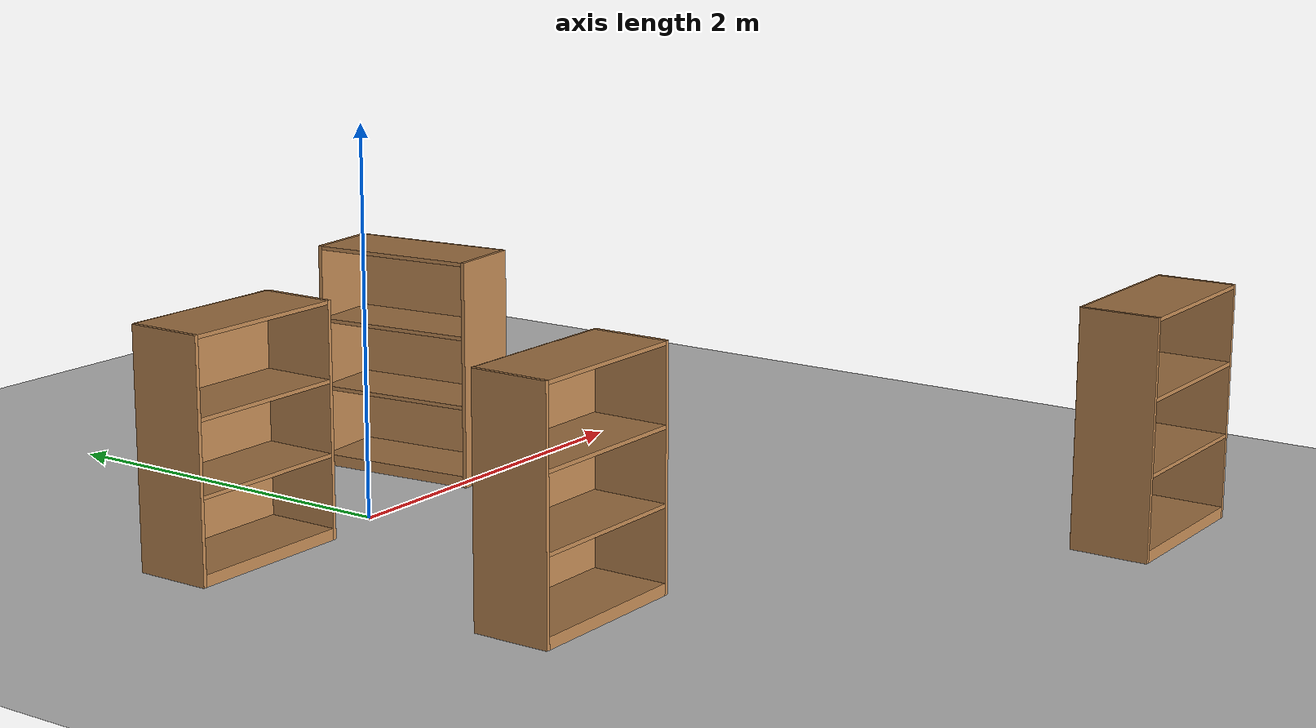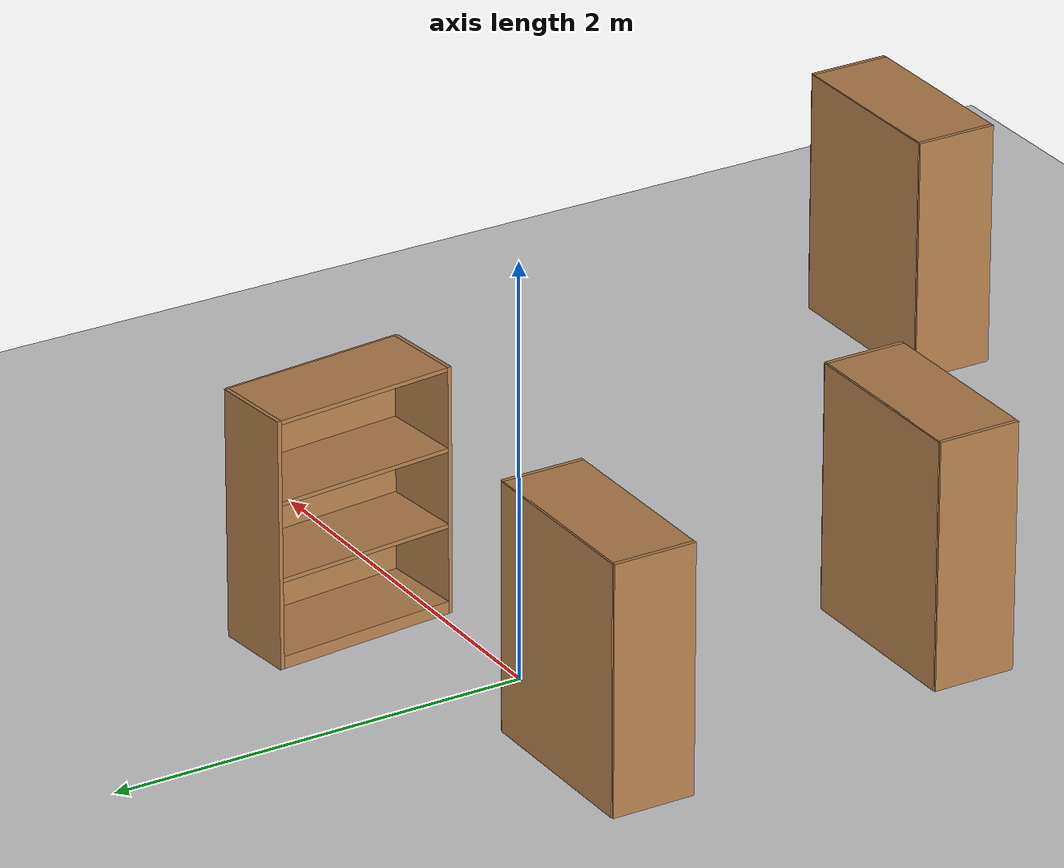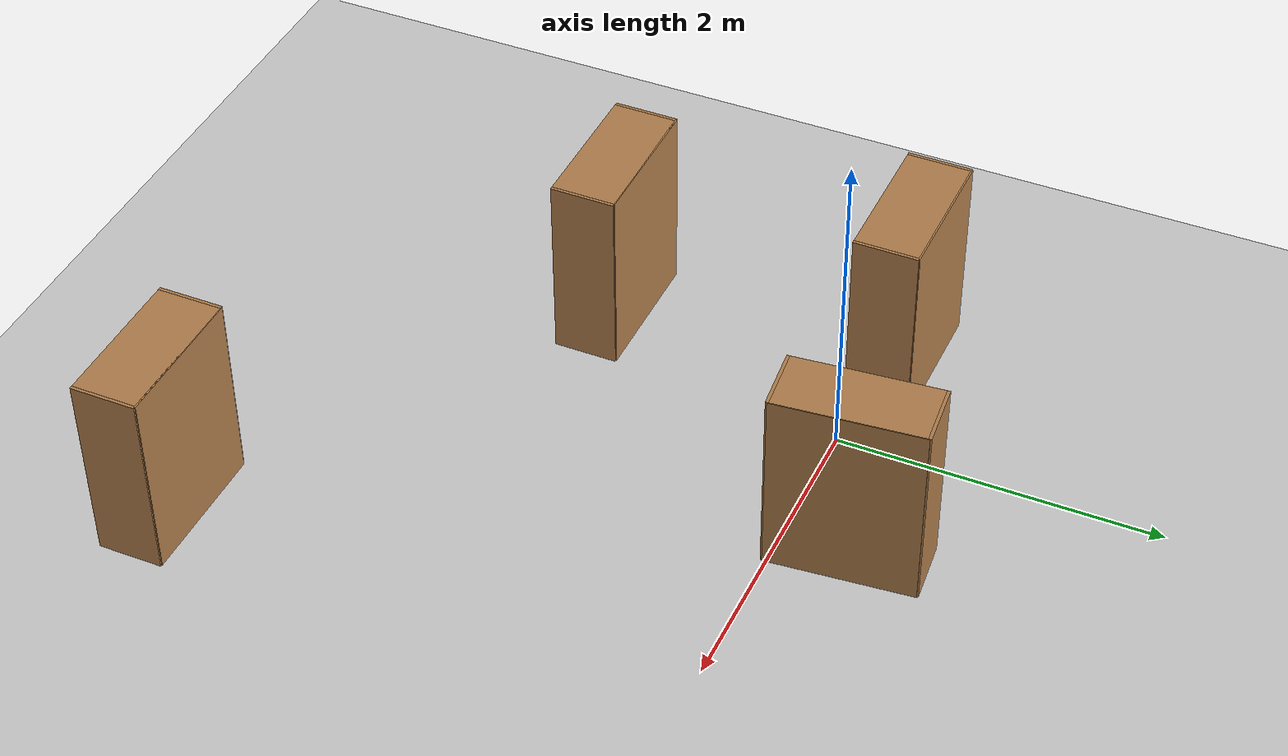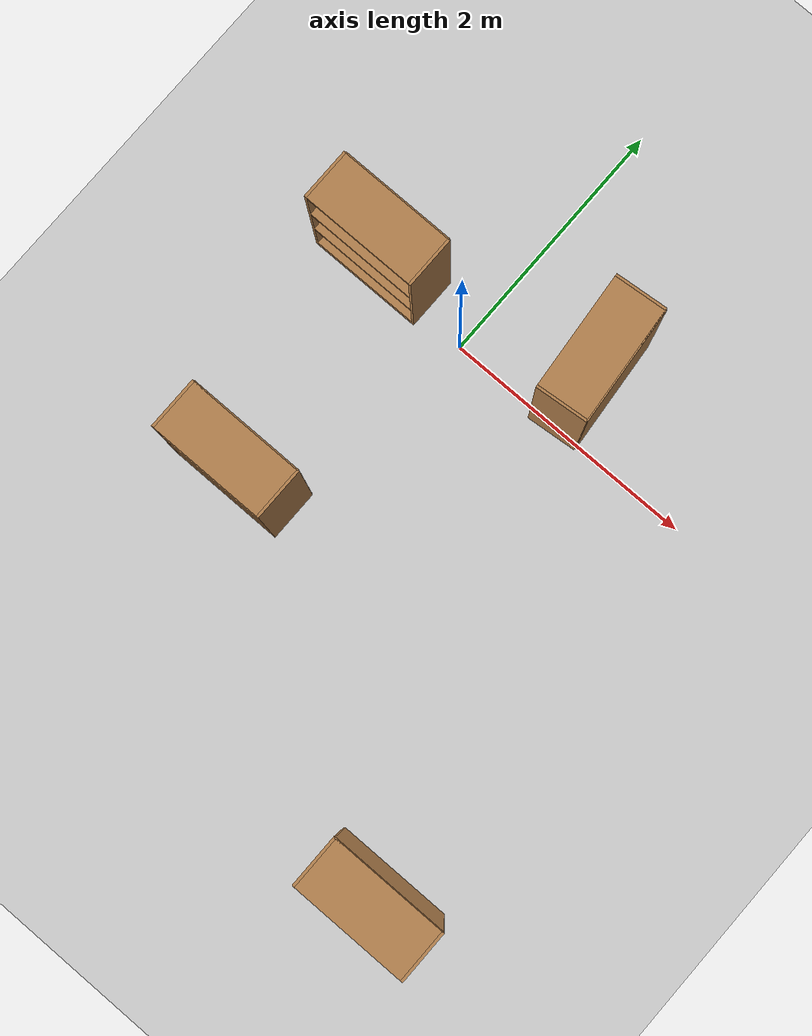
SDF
<sdf version="1.7">
 <world name="default">
  <light name="sun" type="directional">
   <pose>0 0 10 0 -0 0</pose>
   <diffuse>0.8 0.8 0.8 1</diffuse>
   <specular>0.2 0.2 0.2 1</specular>
   <attenuation>
    <range>1000</range>
    <constant>0.9</constant>
    <linear>0.01</linear>
    <quadratic>0.001</quadratic>
   </attenuation>
   <direction>-0.5 0.1 -0.9</direction>
   <spot><inner_angle>0</inner_angle><outer_angle>0</outer_angle><falloff>0</falloff></spot>
  </light>
  <model name="ground_plane">
   <static>1</static>
   <link name="link">
    <collision name="collision">
     <geometry><plane><normal>0 0 1</normal><size>100 100</size></plane></geometry>
     <surface>
      <contact><collide_bitmask>65535</collide_bitmask></contact>
      <friction><ode><mu>100</mu><mu2>50</mu2></ode></friction>
     </surface>
    </collision>
    <visual name="visual">
     <cast_shadows>0</cast_shadows>
     <geometry><plane><normal>0 0 1</normal><size>100 100</size></plane></geometry>
     <material>
      <script><uri>file://media/materials/scripts/gazebo.material</uri><name>Gazebo/Grey</name></script>
     </material>
    </visual>
   </link>
  </model>
  <gravity>0 0 -9.8</gravity>
  <magnetic_field>6e-06 2.3e-05 -4.2e-05</magnetic_field>
  <atmosphere type="adiabatic"/>
  <physics type="ode">
   <max_step_size>0.001</max_step_size>
   <real_time_factor>1</real_time_factor>
   <real_time_update_rate>1000</real_time_update_rate>
  </physics>
  <scene><ambient>0.4 0.4 0.4 1</ambient><background>0.7 0.7 0.7 1</background><shadows>1</shadows></scene>
  <audio><device>default</device></audio>
  <spherical_coordinates>
   <surface_model>EARTH_WGS84</surface_model>
   <latitude_deg>0</latitude_deg>
   <longitude_deg>0</longitude_deg>
   <elevation>0</elevation>
   <heading_deg>0</heading_deg>
  </spherical_coordinates>
  <model name="bookshelf">
   <static>1</static>
   <link name="link">
    <inertial><mass>1</mass></inertial>
    <collision name="back">
     <pose>0 0.005 0.6 0 -0 0</pose>
     <geometry><box><size>0.9 0.01 1.2</size></box></geometry>
    </collision>
    <visual name="visual1">
     <pose>0 0.005 0.6 0 -0 0</pose>
     <geometry><box><size>0.9 0.01 1.2</size></box></geometry>
     <material>
      <script><uri>file://media/materials/scripts/gazebo.material</uri><name>Gazebo/Wood</name></script>
     </material>
    </visual>
    <collision name="left_side">
     <pose>0.45 -0.195 0.6 0 -0 0</pose>
     <geometry><box><size>0.02 0.4 1.2</size></box></geometry>
    </collision>
    <visual name="visual2">
     <pose>0.45 -0.195 0.6 0 -0 0</pose>
     <geometry><box><size>0.02 0.4 1.2</size></box></geometry>
     <material>
      <script><uri>file://media/materials/scripts/gazebo.material</uri><name>Gazebo/Wood</name></script>
     </material>
    </visual>
    <collision name="right_side">
     <pose>-0.45 -0.195 0.6 0 -0 0</pose>
     <geometry><box><size>0.02 0.4 1.2</size></box></geometry>
    </collision>
    <visual name="visual3">
     <pose>-0.45 -0.195 0.6 0 -0 0</pose>
     <geometry><box><size>0.02 0.4 1.2</size></box></geometry>
     <material>
      <script><uri>file://media/materials/scripts/gazebo.material</uri><name>Gazebo/Wood</name></script>
     </material>
    </visual>
    <collision name="bottom">
     <pose>0 -0.195 0.03 0 -0 0</pose>
     <geometry><box><size>0.88 0.4 0.06</size></box></geometry>
    </collision>
    <visual name="visual4">
     <pose>0 -0.195 0.03 0 -0 0</pose>
     <geometry><box><size>0.88 0.4 0.06</size></box></geometry>
     <material>
      <script><uri>file://media/materials/scripts/gazebo.material</uri><name>Gazebo/Wood</name></script>
     </material>
    </visual>
    <collision name="top">
     <pose>0 -0.195 1.19 0 -0 0</pose>
     <geometry><box><size>0.88 0.4 0.02</size></box></geometry>
    </collision>
    <visual name="visual5">
     <pose>0 -0.195 1.19 0 -0 0</pose>
     <geometry><box><size>0.88 0.4 0.02</size></box></geometry>
     <material>
      <script><uri>file://media/materials/scripts/gazebo.material</uri><name>Gazebo/Wood</name></script>
     </material>
    </visual>
    <collision name="low_shelf">
     <pose>0 -0.195 0.43 0 -0 0</pose>
     <geometry><box><size>0.88 0.4 0.02</size></box></geometry>
    </collision>
    <visual name="visual6">
     <pose>0 -0.195 0.43 0 -0 0</pose>
     <geometry><box><size>0.88 0.4 0.02</size></box></geometry>
     <material>
      <script><uri>file://media/materials/scripts/gazebo.material</uri><name>Gazebo/Wood</name></script>
     </material>
    </visual>
    <collision name="high_shelf">
     <pose>0 -0.195 0.8 0 -0 0</pose>
     <geometry><box><size>0.88 0.4 0.02</size></box></geometry>
    </collision>
    <visual name="visual7">
     <pose>0 -0.195 0.8 0 -0 0</pose>
     <geometry><box><size>0.88 0.4 0.02</size></box></geometry>
     <material>
      <script><uri>file://media/materials/scripts/gazebo.material</uri><name>Gazebo/Wood</name></script>
     </material>
    </visual>
   </link>
   <pose>-0.561121 -1.48653 0 0 -0 0</pose>
  </model>
  <model name="bookshelf_clone">
   <static>1</static>
   <link name="link">
    <inertial><mass>1</mass></inertial>
    <collision name="back">
     <pose>0 0.005 0.6 0 -0 0</pose>
     <geometry><box><size>0.9 0.01 1.2</size></box></geometry>
    </collision>
    <visual name="visual1">
     <pose>0 0.005 0.6 0 -0 0</pose>
     <geometry><box><size>0.9 0.01 1.2</size></box></geometry>
     <material>
      <script><uri>file://media/materials/scripts/gazebo.material</uri><name>Gazebo/Wood</name></script>
     </material>
    </visual>
    <collision name="left_side">
     <pose>0.45 -0.195 0.6 0 -0 0</pose>
     <geometry><box><size>0.02 0.4 1.2</size></box></geometry>
    </collision>
    <visual name="visual2">
     <pose>0.45 -0.195 0.6 0 -0 0</pose>
     <geometry><box><size>0.02 0.4 1.2</size></box></geometry>
     <material>
      <script><uri>file://media/materials/scripts/gazebo.material</uri><name>Gazebo/Wood</name></script>
     </material>
    </visual>
    <collision name="right_side">
     <pose>-0.45 -0.195 0.6 0 -0 0</pose>
     <geometry><box><size>0.02 0.4 1.2</size></box></geometry>
    </collision>
    <visual name="visual3">
     <pose>-0.45 -0.195 0.6 0 -0 0</pose>
     <geometry><box><size>0.02 0.4 1.2</size></box></geometry>
     <material>
      <script><uri>file://media/materials/scripts/gazebo.material</uri><name>Gazebo/Wood</name></script>
     </material>
    </visual>
    <collision name="bottom">
     <pose>0 -0.195 0.03 0 -0 0</pose>
     <geometry><box><size>0.88 0.4 0.06</size></box></geometry>
    </collision>
    <visual name="visual4">
     <pose>0 -0.195 0.03 0 -0 0</pose>
     <geometry><box><size>0.88 0.4 0.06</size></box></geometry>
     <material>
      <script><uri>file://media/materials/scripts/gazebo.material</uri><name>Gazebo/Wood</name></script>
     </material>
    </visual>
    <collision name="top">
     <pose>0 -0.195 1.19 0 -0 0</pose>
     <geometry><box><size>0.88 0.4 0.02</size></box></geometry>
    </collision>
    <visual name="visual5">
     <pose>0 -0.195 1.19 0 -0 0</pose>
     <geometry><box><size>0.88 0.4 0.02</size></box></geometry>
     <material>
      <script><uri>file://media/materials/scripts/gazebo.material</uri><name>Gazebo/Wood</name></script>
     </material>
    </visual>
    <collision name="low_shelf">
     <pose>0 -0.195 0.43 0 -0 0</pose>
     <geometry><box><size>0.88 0.4 0.02</size></box></geometry>
    </collision>
    <visual name="visual6">
     <pose>0 -0.195 0.43 0 -0 0</pose>
     <geometry><box><size>0.88 0.4 0.02</size></box></geometry>
     <material>
      <script><uri>file://media/materials/scripts/gazebo.material</uri><name>Gazebo/Wood</name></script>
     </material>
    </visual>
    <collision name="high_shelf">
     <pose>0 -0.195 0.8 0 -0 0</pose>
     <geometry><box><size>0.88 0.4 0.02</size></box></geometry>
    </collision>
    <visual name="visual7">
     <pose>0 -0.195 0.8 0 -0 0</pose>
     <geometry><box><size>0.88 0.4 0.02</size></box></geometry>
     <material>
      <script><uri>file://media/materials/scripts/gazebo.material</uri><name>Gazebo/Wood</name></script>
     </material>
    </visual>
   </link>
   <pose>-0.816013 0.300648 0 0 -0 0</pose>
  </model>
  <model name="bookshelf_clone_0">
   <static>1</static>
   <link name="link">
    <inertial><mass>1</mass></inertial>
    <collision name="back">
     <pose>0 0.005 0.6 0 -0 0</pose>
     <geometry><box><size>0.9 0.01 1.2</size></box></geometry>
    </collision>
    <visual name="visual1">
     <pose>0 0.005 0.6 0 -0 0</pose>
     <geometry><box><size>0.9 0.01 1.2</size></box></geometry>
     <material>
      <script><uri>file://media/materials/scripts/gazebo.material</uri><name>Gazebo/Wood</name></script>
     </material>
    </visual>
    <collision name="left_side">
     <pose>0.45 -0.195 0.6 0 -0 0</pose>
     <geometry><box><size>0.02 0.4 1.2</size></box></geometry>
    </collision>
    <visual name="visual2">
     <pose>0.45 -0.195 0.6 0 -0 0</pose>
     <geometry><box><size>0.02 0.4 1.2</size></box></geometry>
     <material>
      <script><uri>file://media/materials/scripts/gazebo.material</uri><name>Gazebo/Wood</name></script>
     </material>
    </visual>
    <collision name="right_side">
     <pose>-0.45 -0.195 0.6 0 -0 0</pose>
     <geometry><box><size>0.02 0.4 1.2</size></box></geometry>
    </collision>
    <visual name="visual3">
     <pose>-0.45 -0.195 0.6 0 -0 0</pose>
     <geometry><box><size>0.02 0.4 1.2</size></box></geometry>
     <material>
      <script><uri>file://media/materials/scripts/gazebo.material</uri><name>Gazebo/Wood</name></script>
     </material>
    </visual>
    <collision name="bottom">
     <pose>0 -0.195 0.03 0 -0 0</pose>
     <geometry><box><size>0.88 0.4 0.06</size></box></geometry>
    </collision>
    <visual name="visual4">
     <pose>0 -0.195 0.03 0 -0 0</pose>
     <geometry><box><size>0.88 0.4 0.06</size></box></geometry>
     <material>
      <script><uri>file://media/materials/scripts/gazebo.material</uri><name>Gazebo/Wood</name></script>
     </material>
    </visual>
    <collision name="top">
     <pose>0 -0.195 1.19 0 -0 0</pose>
     <geometry><box><size>0.88 0.4 0.02</size></box></geometry>
    </collision>
    <visual name="visual5">
     <pose>0 -0.195 1.19 0 -0 0</pose>
     <geometry><box><size>0.88 0.4 0.02</size></box></geometry>
     <material>
      <script><uri>file://media/materials/scripts/gazebo.material</uri><name>Gazebo/Wood</name></script>
     </material>
    </visual>
    <collision name="low_shelf">
     <pose>0 -0.195 0.43 0 -0 0</pose>
     <geometry><box><size>0.88 0.4 0.02</size></box></geometry>
    </collision>
    <visual name="visual6">
     <pose>0 -0.195 0.43 0 -0 0</pose>
     <geometry><box><size>0.88 0.4 0.02</size></box></geometry>
     <material>
      <script><uri>file://media/materials/scripts/gazebo.material</uri><name>Gazebo/Wood</name></script>
     </material>
    </visual>
    <collision name="high_shelf">
     <pose>0 -0.195 0.8 0 -0 0</pose>
     <geometry><box><size>0.88 0.4 0.02</size></box></geometry>
    </collision>
    <visual name="visual7">
     <pose>0 -0.195 0.8 0 -0 0</pose>
     <geometry><box><size>0.88 0.4 0.02</size></box></geometry>
     <material>
      <script><uri>file://media/materials/scripts/gazebo.material</uri><name>Gazebo/Wood</name></script>
     </material>
    </visual>
   </link>
   <pose>1.04466 0.422594 0 0 0 -1.47777</pose>
  </model>
  <model name="bookshelf_clone_1">
   <static>1</static>
   <link name="link">
    <inertial><mass>1</mass></inertial>
    <collision name="back">
     <pose>0 0.005 0.6 0 -0 0</pose>
     <geometry><box><size>0.9 0.01 1.2</size></box></geometry>
    </collision>
    <visual name="visual1">
     <pose>0 0.005 0.6 0 -0 0</pose>
     <geometry><box><size>0.9 0.01 1.2</size></box></geometry>
     <material>
      <script><uri>file://media/materials/scripts/gazebo.material</uri><name>Gazebo/Wood</name></script>
     </material>
    </visual>
    <collision name="left_side">
     <pose>0.45 -0.195 0.6 0 -0 0</pose>
     <geometry><box><size>0.02 0.4 1.2</size></box></geometry>
    </collision>
    <visual name="visual2">
     <pose>0.45 -0.195 0.6 0 -0 0</pose>
     <geometry><box><size>0.02 0.4 1.2</size></box></geometry>
     <material>
      <script><uri>file://media/materials/scripts/gazebo.material</uri><name>Gazebo/Wood</name></script>
     </material>
    </visual>
    <collision name="right_side">
     <pose>-0.45 -0.195 0.6 0 -0 0</pose>
     <geometry><box><size>0.02 0.4 1.2</size></box></geometry>
    </collision>
    <visual name="visual3">
     <pose>-0.45 -0.195 0.6 0 -0 0</pose>
     <geometry><box><size>0.02 0.4 1.2</size></box></geometry>
     <material>
      <script><uri>file://media/materials/scripts/gazebo.material</uri><name>Gazebo/Wood</name></script>
     </material>
    </visual>
    <collision name="bottom">
     <pose>0 -0.195 0.03 0 -0 0</pose>
     <geometry><box><size>0.88 0.4 0.06</size></box></geometry>
    </collision>
    <visual name="visual4">
     <pose>0 -0.195 0.03 0 -0 0</pose>
     <geometry><box><size>0.88 0.4 0.06</size></box></geometry>
     <material>
      <script><uri>file://media/materials/scripts/gazebo.material</uri><name>Gazebo/Wood</name></script>
     </material>
    </visual>
    <collision name="top">
     <pose>0 -0.195 1.19 0 -0 0</pose>
     <geometry><box><size>0.88 0.4 0.02</size></box></geometry>
    </collision>
    <visual name="visual5">
     <pose>0 -0.195 1.19 0 -0 0</pose>
     <geometry><box><size>0.88 0.4 0.02</size></box></geometry>
     <material>
      <script><uri>file://media/materials/scripts/gazebo.material</uri><name>Gazebo/Wood</name></script>
     </material>
    </visual>
    <collision name="low_shelf">
     <pose>0 -0.195 0.43 0 -0 0</pose>
     <geometry><box><size>0.88 0.4 0.02</size></box></geometry>
    </collision>
    <visual name="visual6">
     <pose>0 -0.195 0.43 0 -0 0</pose>
     <geometry><box><size>0.88 0.4 0.02</size></box></geometry>
     <material>
      <script><uri>file://media/materials/scripts/gazebo.material</uri><name>Gazebo/Wood</name></script>
     </material>
    </visual>
    <collision name="high_shelf">
     <pose>0 -0.195 0.8 0 -0 0</pose>
     <geometry><box><size>0.88 0.4 0.02</size></box></geometry>
    </collision>
    <visual name="visual7">
     <pose>0 -0.195 0.8 0 -0 0</pose>
     <geometry><box><size>0.88 0.4 0.02</size></box></geometry>
     <material>
      <script><uri>file://media/materials/scripts/gazebo.material</uri><name>Gazebo/Wood</name></script>
     </material>
    </visual>
   </link>
   <pose>2.04987 -3.09149 0 0 -0 0</pose>
  </model>
 </world>
</sdf>
